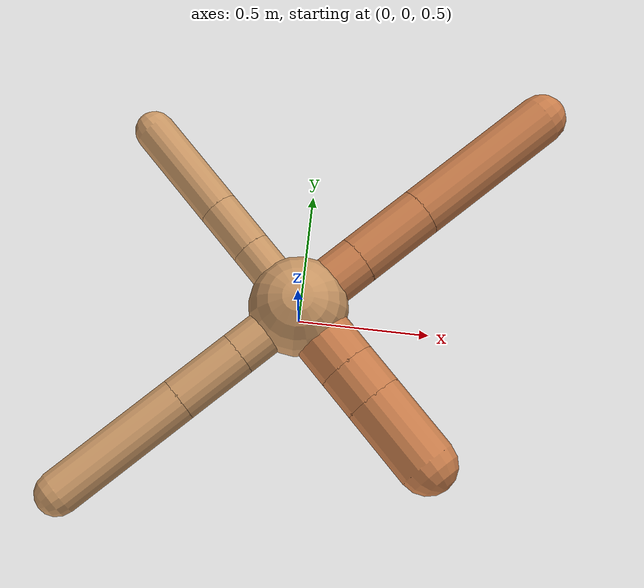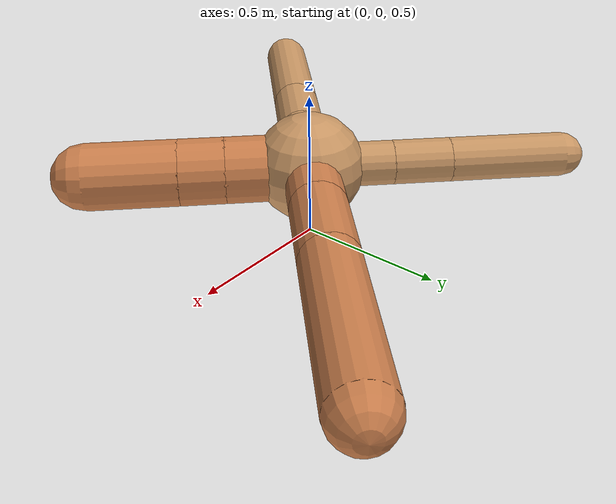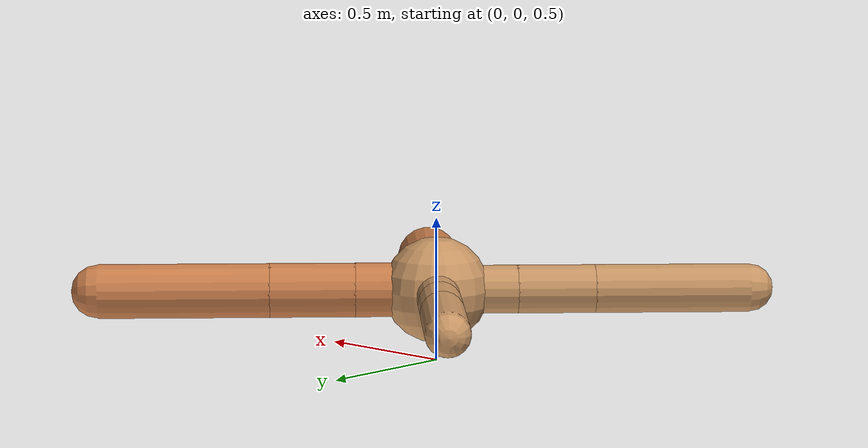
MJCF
<?xml version="1.0" ?>
<mujoco model="ant">

	<compiler angle="degree" coordinate="local" inertiafromgeom="true"/>

	<option integrator="RK4" timestep="0.01"/>

	<custom>

		<numeric data="0.0 0.0 0.55 1.0 0.0 0.0 0.0 0.0 1.0 0.0 -1.0 0.0 -1.0 0.0 1.0" name="init_qpos"/>

	</custom>

	<default>

		<joint armature="1" damping="1" limited="true"/>

		<geom conaffinity="0" condim="3" density="5.0" friction="1.5 0.1 0.1" margin="0.01" rgba="0.8 0.6 0.4 1"/>

	</default>

	<worldbody>

		<body name="torso" pos="0 0 0.75">

			<geom name="torso_geom" pos="0 0 0" size="0.18515483033211677" type="sphere"/>

			<!--joint armature="0" damping="0" limited="false" margin="0.01" name="root" pos="0 0 0" type="free"/-->

			<body name="front_left_leg" pos="0 0 0">

				<geom fromto="0 0 0 0.2 0.2 0" name="aux_1_geom" size="0.09429431377576741" type="capsule" rgba=".8 .5 .3 1"/>

				<body name="aux_1" pos="0.2 0.2 0">

					<joint axis="0 0 1" name="hip_1" pos="0.0 0.0 0.0" range="-40 40" type="hinge"/>

					<geom fromto="0 0 0 0.21004417168179473 0.21004417168179473 0" name="left_leg_geom" size="0.09429431377576741" type="capsule" rgba=".8 .5 .3 1"/>

					<body pos="0.21004417168179473 0.21004417168179473 0" name="front_left_foot">

						<joint axis="-1 1 0" name="ankle_1" pos="0.0 0.0 0.0" range="30 100" type="hinge"/>

						<geom fromto="0 0 0 0.42008834336358947 0.42008834336358947 0" name="left_ankle_geom" size="0.09429431377576741" type="capsule" rgba=".8 .5 .3 1"/>

					</body>

				</body>

			</body>

			<body name="front_right_leg" pos="0 0 0">

				<geom fromto="0 0 0 -0.2 0.2 0" name="aux_2_geom" size="0.07536683357373512" type="capsule"/>

				<body name="aux_2" pos="-0.2 0.2 0">

					<joint axis="0 0 1" name="hip_2" pos="0.0 0.0 0.0" range="-40 40" type="hinge"/>

					<geom fromto="0 0 0 -0.13907735670622937 0.13907735670622937 0" name="right_leg_geom" size="0.07536683357373512" type="capsule"/>

					<body pos="-0.13907735670622937 0.13907735670622937 0" name="front_right_foot">

						<joint axis="1 1 0" name="ankle_2" pos="0.0 0.0 0.0" range="-100 -30" type="hinge"/>

						<geom fromto="0 0 0 -0.27815471341245873 0.27815471341245873 0" name="right_ankle_geom" size="0.07536683357373512" type="capsule"/>

					</body>

				</body>

			</body>

			<body name="left_back_leg" pos="0 0 0">

				<geom fromto="0 0 0 -0.2 -0.2 0" name="aux_3_geom" size="0.08420330947466219" type="capsule"/>

				<body name="aux_3" pos="-0.2 -0.2 0">

					<joint axis="0 0 1" name="hip_3" pos="0.0 0.0 0.0" range="-40 40" type="hinge"/>

					<geom fromto="0 0 0 -0.1908783635209056 -0.1908783635209056 0" name="back_leg_geom" size="0.08420330947466219" type="capsule"/>

					<body pos="-0.1908783635209056 -0.1908783635209056 0" name="left_back_foot">

						<joint axis="-1 1 0" name="ankle_3" pos="0.0 0.0 0.0" range="-100 -30" type="hinge"/>

						<geom fromto="0 0 0 -0.3817567270418112 -0.3817567270418112 0" name="third_ankle_geom" size="0.08420330947466219" type="capsule"/>

					</body>

				</body>

			</body>

			<body name="right_back_leg" pos="0 0 0">

				<geom fromto="0 0 0 0.2 -0.2 0" name="aux_4_geom" size="0.11235156996547789" type="capsule" rgba=".8 .5 .3 1"/>

				<body name="aux_4" pos="0.2 -0.2 0">

					<joint axis="0 0 1" name="hip_4" pos="0.0 0.0 0.0" range="-40 40" type="hinge"/>

					<geom fromto="0 0 0 0.1081914359839423 -0.1081914359839423 0" name="rightback_leg_geom" size="0.11235156996547789" type="capsule" rgba=".8 .5 .3 1"/>

					<body pos="0.1081914359839423 -0.1081914359839423 0" name="right_back_foot">

						<joint axis="1 1 0" name="ankle_4" pos="0.0 0.0 0.0" range="30 100" type="hinge"/>

						<geom fromto="0 0 0 0.2163828719678846 -0.2163828719678846 0" name="fourth_ankle_geom" size="0.11235156996547789" type="capsule" rgba=".8 .5 .3 1"/>

					</body>

				</body>

			</body>

		</body>

	</worldbody>

	<actuator>

		<motor ctrllimited="true" ctrlrange="-1.0 1.0" joint="hip_4" gear="150"/>

		<motor ctrllimited="true" ctrlrange="-1.0 1.0" joint="ankle_4" gear="150"/>

		<motor ctrllimited="true" ctrlrange="-1.0 1.0" joint="hip_1" gear="150"/>

		<motor ctrllimited="true" ctrlrange="-1.0 1.0" joint="ankle_1" gear="150"/>

		<motor ctrllimited="true" ctrlrange="-1.0 1.0" joint="hip_2" gear="150"/>

		<motor ctrllimited="true" ctrlrange="-1.0 1.0" joint="ankle_2" gear="150"/>

		<motor ctrllimited="true" ctrlrange="-1.0 1.0" joint="hip_3" gear="150"/>

		<motor ctrllimited="true" ctrlrange="-1.0 1.0" joint="ankle_3" gear="150"/>

	</actuator>

</mujoco>
